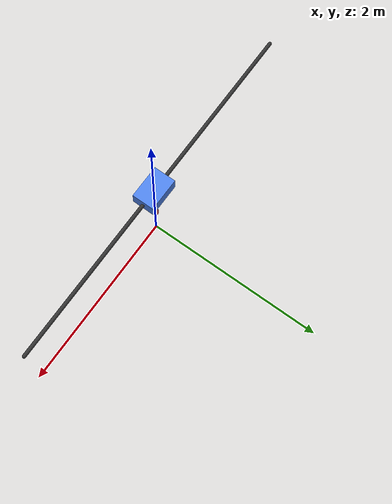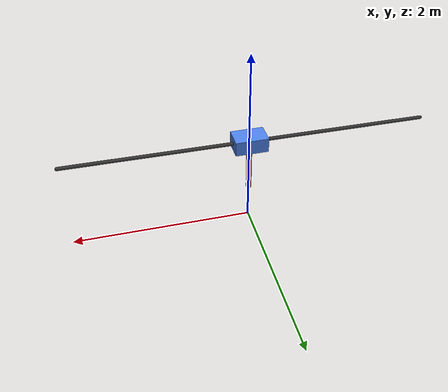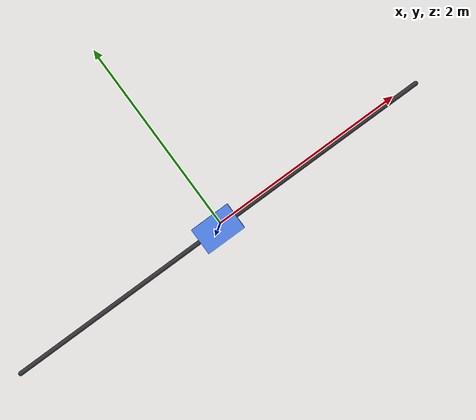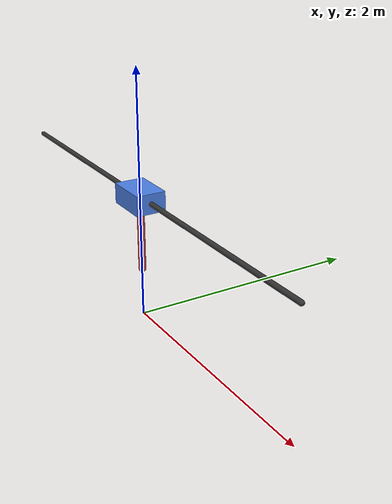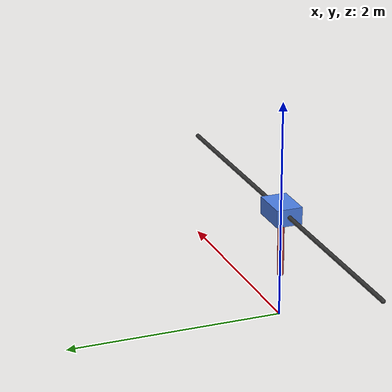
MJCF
<mujoco model="cartpole_swingup">
  <compiler angle="radian"/>
  <option timestep="0.01" gravity="0 0 -9.81"/>

  <default>
    <joint damping="0.02"/>
    <geom rgba="0.7 0.7 0.7 1"/>
  </default>

  <worldbody>
    <geom name="rail"
          type="capsule"
          fromto="-2 0 1 2 0 1"
          size="0.02"
          rgba="0.2 0.2 0.2 1"/>

    <body name="cart" pos="0 0 1">
      <joint name="slider" type="slide" axis="1 0 0" range="-2 2" damping="0.1"/>
      <geom name="cart_geom"
            type="box"
            size="0.18 0.12 0.08"
            mass="1.0"
            rgba="0.3 0.5 0.9 1"/>

      <body name="pole" pos="0 0 0">
        <joint name="hinge" type="hinge" axis="0 1 0" damping="0.02"/>

        <geom name="pole_geom"
              type="capsule"
              fromto="0 0 0 0 0 -0.6"
              size="0.03"
              mass="0.3"
              rgba="0.8 0.3 0.3 1"/>
      </body>
    </body>
  </worldbody>

  <actuator>
    <motor name="cart_motor"
          joint="slider"
          gear="1"
          ctrllimited="true"
          ctrlrange="-10 10"/>
  </actuator>
</mujoco>
